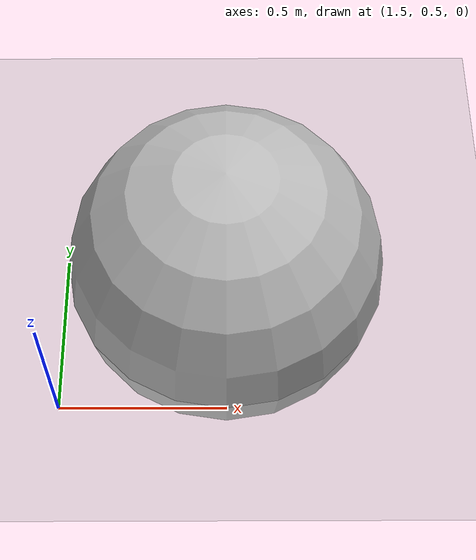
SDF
<!--
This work is licensed under the Creative Commons Attribution-NonCommercial 4.0 International License.
To view a copy of this license, visit http://creativecommons.org/licenses/by-nc/4.0/.
-->

<?xml version="1.0" ?>
<sdf version="1.5">
  <world name="vrc_task_1">
    <!-- Light Source -->
    <light type="directional" name="sun">
      <cast_shadows>false</cast_shadows>
      <pose>0 0 100 0 0 0</pose>
      <diffuse>0.8 0.8 0.8 1</diffuse>
      <specular>0.9 0.9 0.9 1</specular>
      <attenuation>
        <range>1000</range>
        <constant>0.9</constant>
        <linear>0.01</linear>
        <quadratic>0.001</quadratic>
      </attenuation>
      <!-- Vertical direction, for easier position debug -->
      <direction>0 0 -1</direction>
    </light>

    <physics type="ode">
	 <real_time_factor>0.25</real_time_factor>
    </physics>

    <model name="floor_walls_1">
      <static>true</static>
      <link name="link">
        <collision name="collision">
          <geometry>
            <plane>
              <normal>0 0 1</normal>
              <size>11.03 5.66</size>
            </plane>
          </geometry>
          <surface>
            <friction>
              <ode>
                <mu>10000</mu>
                <mu2>10000</mu2>
              </ode>
            </friction>
          </surface>
        </collision>
        <visual name="visual">
          <cast_shadows>false</cast_shadows>
          <geometry>
            <plane>
              <normal>0 0 1</normal>
              <size>1000 1000</size>
            </plane>
          </geometry>
          <material>
  	        <script>
  	          <uri>file://media/materials/scripts/gazebo.material</uri>
  	          <name>Gazebo/Grey</name>
  	        </script>
         	</material>
        </visual>
      </link>
    </model>

<!-- Coord for testing ball location
-10.4 -8.8 0 0 0 0
-->

    <model name ='sphere'>
        <pose>1 0 0 0 0 0</pose>
        <link name ='link'>
          <pose>1 1 0 0 0 0</pose>
          <collision name ='collision'>
            <geometry>
              <sphere><radius>0.5</radius></sphere>
            </geometry>
          </collision>
          <visual name ='visual'>
            <geometry>
              <sphere><radius>0.5</radius></sphere>
            </geometry>
          </visual>
        </link>
    </model>

    <plugin name="ardupilot_sitl_gazebo_plugin" filename="libardupilot_sitl_gazebo_plugin_rover.so">
    <UAV_MODEL>rover</UAV_MODEL>
    </plugin>
  </world>
</sdf>
